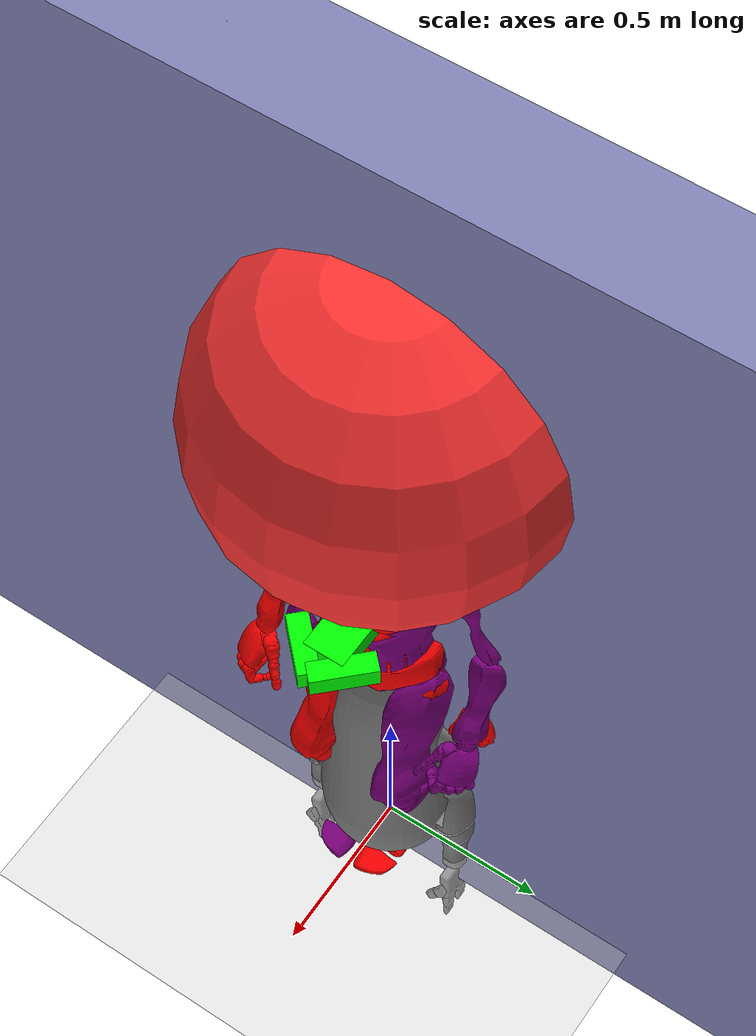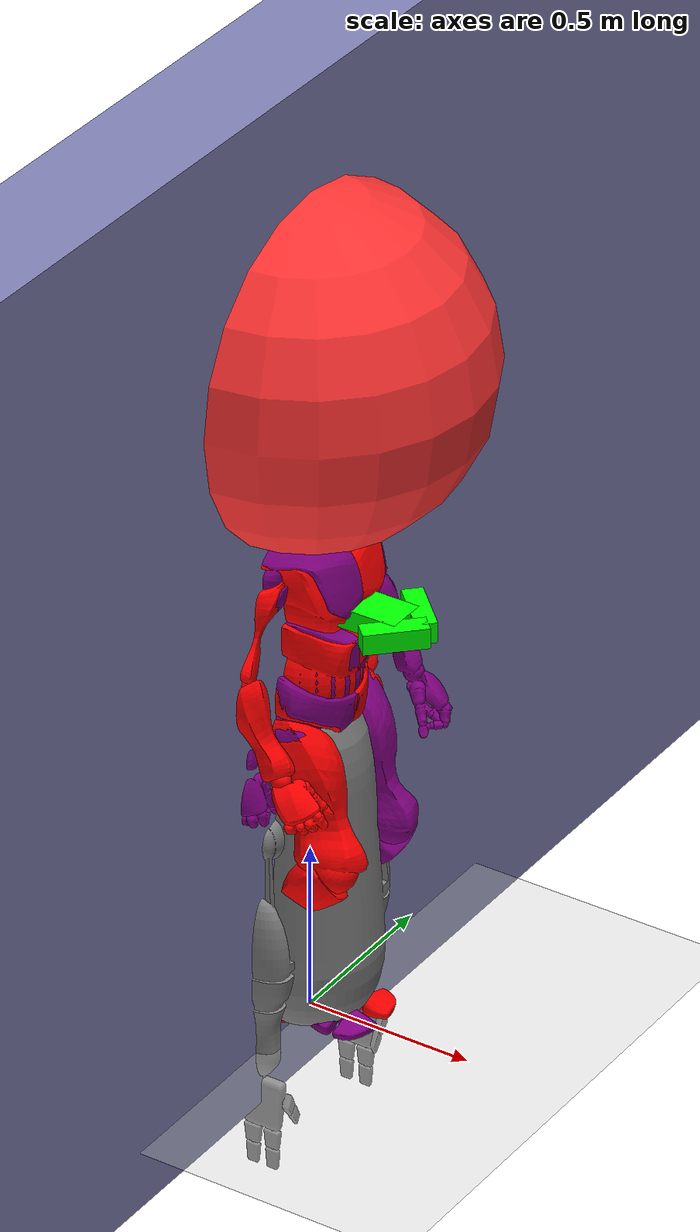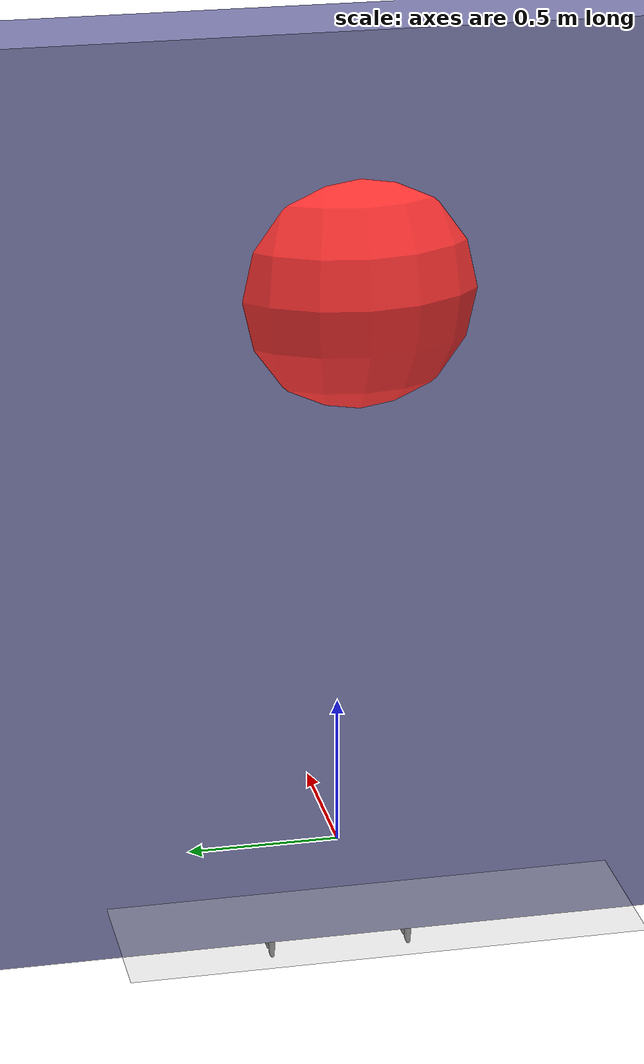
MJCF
<?xml version="1.0" encoding="UTF-8"?>
<mujoco model="indoor_environment">
  <option gravity="0 0 -9.81" />
  <asset>
    <!-- Texture scacchiera blu chiaro e blu scuro -->
    <texture name="chessboard" type="2d" builtin="checker" rgb1="1 1 1" rgb2="0.5 0.5 0.5" width="100" height="100"/>
    <material name="chessboard_material" texture="chessboard" texrepeat="0.5 0.5" texuniform="true"/>
    <material name="sphere_material" rgba="1 0.2 0.2 1"/>
    <material name="cube_material" rgba="0.2 0.2 1 1"/>
    <material name="agent_material" rgba="0 0 0 1"/>
    <material name="wall_material" rgba="0.5 0.5 0.7 1"/>
    <material name="arrow_material" rgba="0 1 0 1"/>
    <material name="floor_material" rgba="0.9 0.9 0.9 1"/>

    <!-- 20 different color materials for humans -->
    <material name="human1_material" rgba="1 0 0 1"/>          <!-- Red -->
    <material name="human2_material" rgba="0 1 0 1"/>          <!-- Green -->
    <material name="human3_material" rgba="0 0 1 1"/>          <!-- Blue -->
    <material name="human4_material" rgba="1 1 0 1"/>          <!-- Yellow -->
    <material name="human5_material" rgba="1 0 1 1"/>          <!-- Magenta -->
    <material name="human6_material" rgba="0 1 1 1"/>          <!-- Cyan -->
    <material name="human7_material" rgba="0.5 0 0 1"/>         <!-- Dark Red -->
    <material name="human8_material" rgba="0 0.5 0 1"/>         <!-- Dark Green -->
    <material name="human9_material" rgba="0 0 0.5 1"/>         <!-- Dark Blue -->
    <material name="human10_material" rgba="0.5 0.5 0 1"/>      <!-- Olive -->
    <material name="human11_material" rgba="0.5 0 0.5 1"/>      <!-- Purple -->
    <material name="human12_material" rgba="0 0.5 0.5 1"/>      <!-- Teal -->
    <material name="human13_material" rgba="1 0.5 0 1"/>        <!-- Orange -->
    <material name="human14_material" rgba="0.5 0.25 0 1"/>     <!-- Brown -->
    <material name="human15_material" rgba="0.85 0.85 0.85 1"/> <!-- Light Gray -->
    <material name="human16_material" rgba="0.5 0.5 0.5 1"/>    <!-- Gray -->
    <material name="human17_material" rgba="1 0.75 0.8 1"/>     <!-- Pink -->
    <material name="human18_material" rgba="0.9 0.9 0 1"/>      <!-- Gold -->
    <material name="human19_material" rgba="0.6 0.8 0.2 1"/>    <!-- Lime Green -->
    <material name="human20_material" rgba="0.2 0.4 0.8 1"/>    <!-- Sky Blue -->

    <mesh name="room_mesh" file="/home/LABAUT/alberto_vaglio/HumanAwareRLNavigation/assets/Floor_hospital_new.stl"/>
    <mesh name="robot_mesh" file="/home/LABAUT/alberto_vaglio/HumanAwareRLNavigation/assets/Robot2.stl"/>
    <mesh name="human_mesh" file="/home/LABAUT/alberto_vaglio/HumanAwareRLNavigation/assets/ybot.stl"/>
    <mesh name="human_mesh_reversed" file="/home/LABAUT/alberto_vaglio/HumanAwareRLNavigation/assets/ybotr.stl"/>
  </asset>

  <worldbody>
    <!-- Floor -->
    <light diffuse=".5 .5 .5" pos = "0 0 5" dir="0 0 -1" castshadow="true"/>
    <geom type="plane" size="150 150 0.1" material="chessboard_material"/>

    <!-- Lighting -->

    <!-- Agent -->
    <body name="agent_body" pos="0 0 1">
      <geom name="agent" type="mesh" mesh="robot_mesh" pos="0 0 -1"/>
      <joint name="slider_x" type="slide" axis="1 0 0"/>
      <joint name="slider_y" type="slide" axis="0 1 0"/>
      <joint name="hinge_z" type="hinge" axis="0 0 1"/>
      <!-- Arrow shaft -->
      <!-- 0.6x scaled arrow -->
        <geom name="arrow_shaft" type="box" size="0.30 0.06 0.03" pos="0 0 0.30" material="arrow_material"/>

        <geom name="arrow_head1" type="box" size="0.09 0.03 0.03" pos="0.30 0.06 0.30" euler="0 0 -45" material="arrow_material"/>
        <geom name="arrow_head2" type="box" size="0.09 0.03 0.03" pos="0.30 -0.06 0.30" euler="0 0 45"  material="arrow_material"/>

    </body>

    <geom name="sphere" type="sphere" size="0.5" pos="0 0 2" material="sphere_material"/>

    <body name="room_mesh_body" pos="0 0 0">
      <geom name="room_geom" type="mesh" mesh="room_mesh" material="wall_material" />
    </body>

    <!-- 20 Humans with different colors -->
    <body name="human1" mocap="true" pos="0 0 0">
      <geom name="human1_vis" type="mesh" mesh="human_mesh" material="human1_material"
        contype="0" conaffinity="0"/>
    </body>

    <body name="human2" mocap="true" pos="0 0 0">
      <geom name="human2_vis" type="mesh" mesh="human_mesh" material="human2_material"
        contype="0" conaffinity="0"/>
    </body>

    <body name="human3" mocap="true" pos="0 0 0">
      <geom name="human3_vis" type="mesh" mesh="human_mesh" material="human3_material"
        contype="0" conaffinity="0"/>
    </body>

    <body name="human4" mocap="true" pos="0 0 0">
      <geom name="human4_vis" type="mesh" mesh="human_mesh" material="human4_material"
        contype="0" conaffinity="0"/>
    </body>

    <body name="human5" mocap="true" pos="0 0 0">
      <geom name="human5_vis" type="mesh" mesh="human_mesh" material="human5_material"
        contype="0" conaffinity="0"/>
    </body>

    <body name="human6" mocap="true" pos="0 0 0">
      <geom name="human6_vis" type="mesh" mesh="human_mesh" material="human6_material"
        contype="0" conaffinity="0"/>
    </body>

    <body name="human7" mocap="true" pos="0 0 0">
      <geom name="human7_vis" type="mesh" mesh="human_mesh" material="human7_material"
        contype="0" conaffinity="0"/>
    </body>

    <body name="human8" mocap="true" pos="0 0 0">
      <geom name="human8_vis" type="mesh" mesh="human_mesh" material="human8_material"
        contype="0" conaffinity="0"/>
    </body>

    <body name="human9" mocap="true" pos="0 0 0">
      <geom name="human9_vis" type="mesh" mesh="human_mesh" material="human9_material"
        contype="0" conaffinity="0"/>
    </body>

    <body name="human10" mocap="true" pos="0 0 0">
      <geom name="human10_vis" type="mesh" mesh="human_mesh" material="human10_material"
        contype="0" conaffinity="0"/>
    </body>

    <body name="human11" mocap="true" pos="0 0 0">
      <geom name="human11_vis" type="mesh" mesh="human_mesh_reversed" material="human11_material"
        contype="1" conaffinity="1"/>
    </body>

    <body name="human12" mocap="true" pos="0 0 0">
      <geom name="human12_vis" type="mesh" mesh="human_mesh_reversed" material="human12_material"
        contype="1" conaffinity="1"/>
    </body>

    <body name="human13" mocap="true" pos="0 0 0">
      <geom name="human13_vis" type="mesh" mesh="human_mesh_reversed" material="human13_material"
        contype="1" conaffinity="1"/>
    </body>

    <body name="human14" mocap="true" pos="0 0 0">
      <geom name="human14_vis" type="mesh" mesh="human_mesh_reversed" material="human14_material"
        contype="1" conaffinity="1"/>
    </body>

    <body name="human15" mocap="true" pos="0 0 0">
      <geom name="human15_vis" type="mesh" mesh="human_mesh_reversed" material="human15_material"
        contype="1" conaffinity="1"/>
    </body>

    <body name="human16" mocap="true" pos="0 0 0">
      <geom name="human16_vis" type="mesh" mesh="human_mesh_reversed" material="human16_material"
        contype="1" conaffinity="1"/>
    </body>

    <body name="human17" mocap="true" pos="0 0 0">
      <geom name="human17_vis" type="mesh" mesh="human_mesh_reversed" material="human17_material"
        contype="1" conaffinity="1"/>
    </body>

    <body name="human18" mocap="true" pos="0 0 0">
      <geom name="human18_vis" type="mesh" mesh="human_mesh_reversed" material="human18_material"
        contype="1" conaffinity="1"/>
    </body>

    <body name="human19" mocap="true" pos="0 0 0">
      <geom name="human19_vis" type="mesh" mesh="human_mesh_reversed" material="human19_material"
        contype="1" conaffinity="1"/>
    </body>

    <body name="human20" mocap="true" pos="0 0 0">
      <geom name="human20_vis" type="mesh" mesh="human_mesh_reversed" material="human20_material"
        contype="1" conaffinity="1"/>
    </body>

  </worldbody>

  <sensor>
  </sensor>

  <visual>
    <global offwidth="800" offheight="600"/>
    <quality shadowsize="2048"/>
    <headlight ambient="0.3 0.3 0.3" diffuse="0.7 0.7 0.7" specular="0.1 0.1 0.1"/>
    <map znear="0.01"/>
    <scale forcewidth="0.01" contactwidth="0.05" contactheight="0.05" jointwidth="0.05" framelength="0.2" framewidth="0.02"/>
    <rgba contactpoint="0 0.9 0 0.7" contactforce="0 0.5 0.3 0.1"/>
  </visual>
</mujoco>
